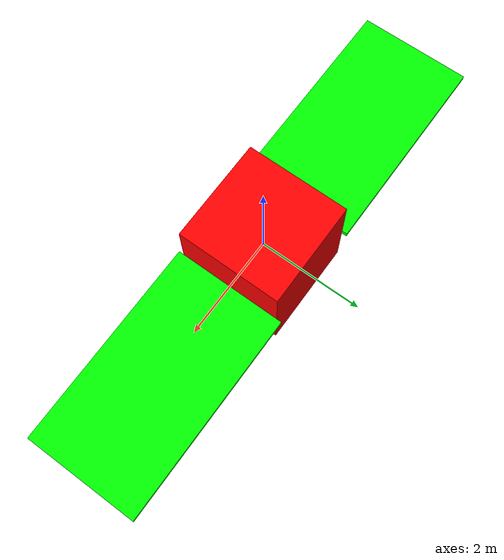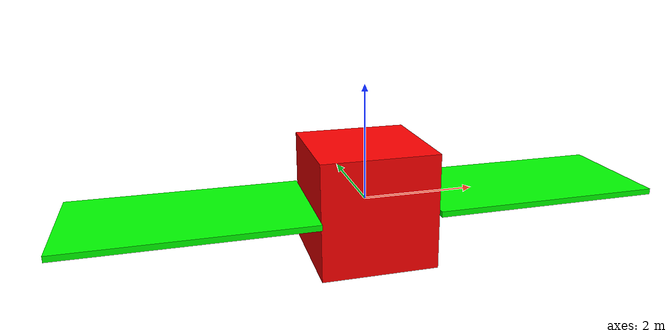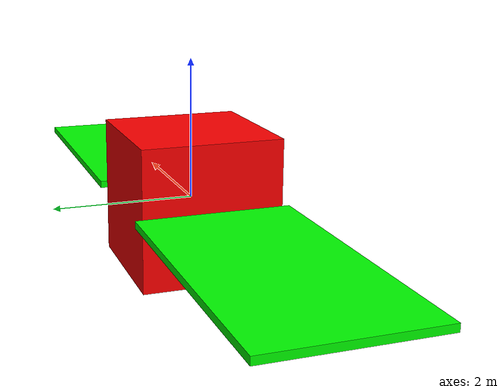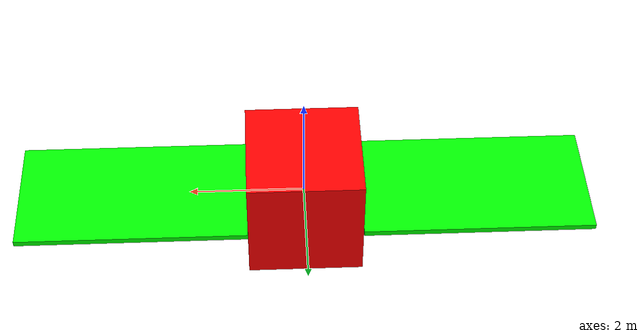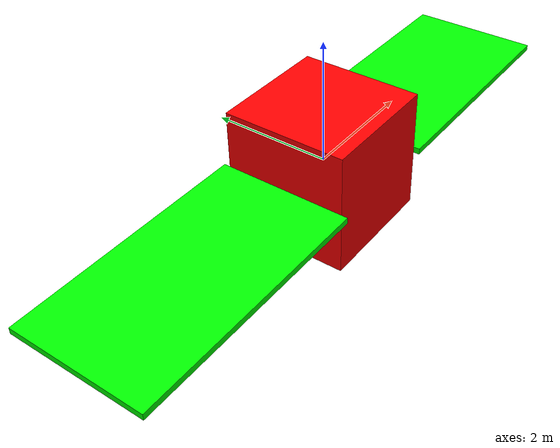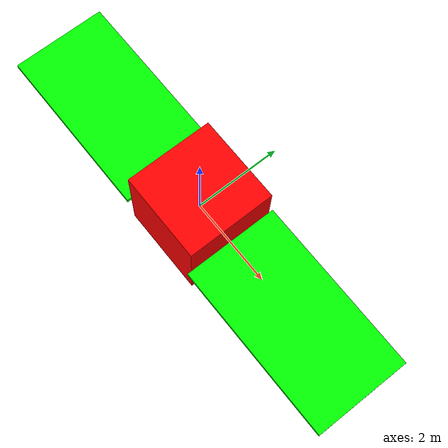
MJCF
<mujoco>
	<option gravity="0 0 0" integrator="RK4" timestep="0.1"/>

	<default class="main">
		<default class="panel">
			<geom type="box" pos="0 0 2" size="1.1 0.05 2" rgba="0 1 0 1"/>
		</default>
    </default>

	<worldbody>
		<body name="cube">
			<freejoint/>
			<geom name="hub_box" type="box" size="1 1 1" rgba="1 0 0 1"/>

			<body name="panel_1" childclass="panel" pos="1 0 0" xyaxes="0 1 0 0 0 1">
				<site name="test_site"/>
				<geom name="panel_1_box"/>
				<joint name="panel_1_elevation" axis="1 0 0"/>
			</body>
			<body name="panel_2" childclass="panel" pos="-1 0 0" xyaxes="0 -1 0 0 0 1">
				<geom name="panel_2_box"/>
				<joint name="panel_2_elevation" axis="1 0 0"/>
			</body>
		</body>
	</worldbody>

	<actuator>
		<motor name="panel_1_elevation" joint="panel_1_elevation"/>
		<motor name="panel_2_elevation" joint="panel_2_elevation"/>
	</actuator>

	<keyframe>
		<key qpos='0 0 0 1 0 0 0 0 0' qvel="0 0 0 0.1 0.2 0.3 0.1 0.1"/>
	</keyframe>

	<custom>
		<text name="basilisk:forceactuator" data="test_act_1@cube_com test_act_2@panel_1_com"/>
		<text name="basilisk:forcetorqueactuator" data="test_act_3@cube_com test_act_4@panel_2_com"/>
	</custom>
</mujoco>
